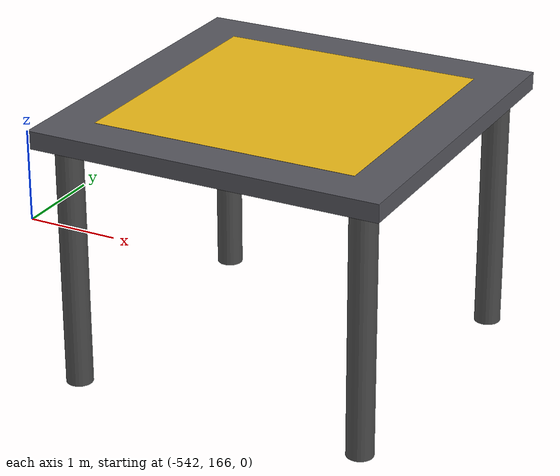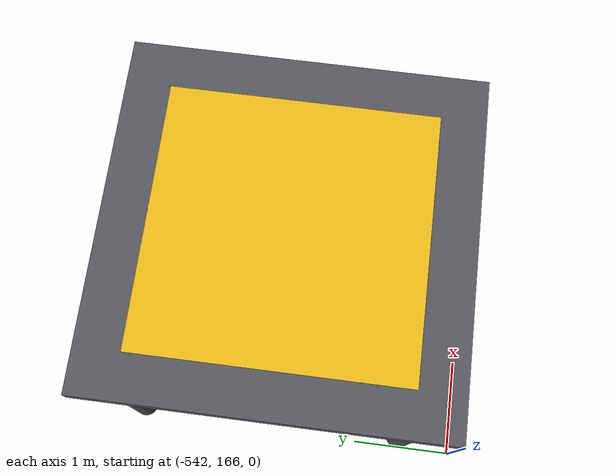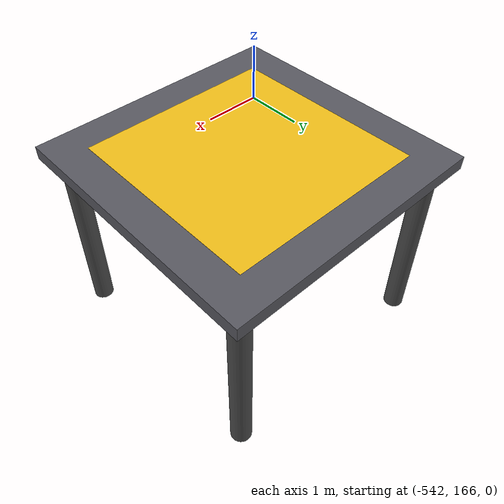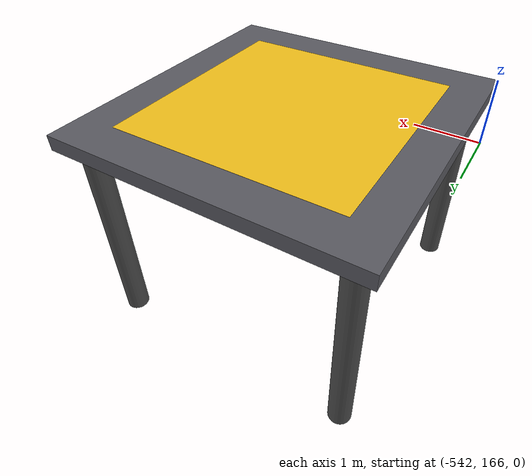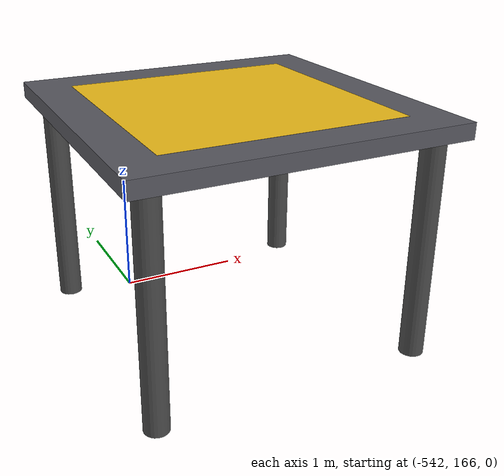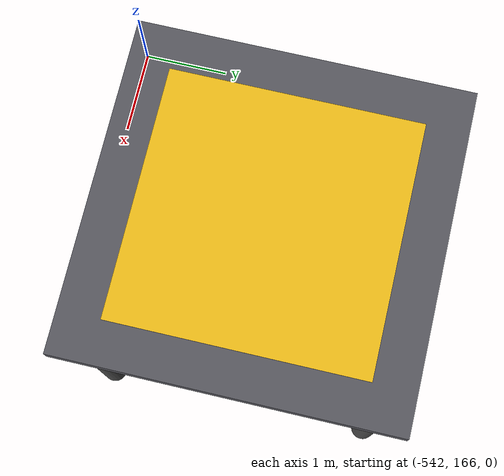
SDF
<sdf version="1.12">
 <world name="default">
  <physics name="default_physics" type="dart"><max_step_size>0.004</max_step_size></physics>
  <spherical_coordinates>
   <surface_model>EARTH_WGS84</surface_model>
   <world_frame_orientation>ENU</world_frame_orientation>
   <latitude_deg>-33.724223</latitude_deg>
   <longitude_deg>150.679736</longitude_deg>
   <elevation>0</elevation>
   <heading_deg>0</heading_deg>
  </spherical_coordinates>
  <scene><ambient>1.0 1.0 1.0</ambient><background>0.0 0.7 0.8</background><grid>false</grid></scene>
  <light type="directional" name="sun">
   <pose>0 0 20 0 0 0</pose>
   <diffuse>1 1 1 1</diffuse>
   <specular>0.5 0.5 0.5 1</specular>
   <attenuation>
    <range>1000</range>
    <constant>0.9</constant>
    <linear>0.01</linear>
    <quadratic>0.001</quadratic>
   </attenuation>
   <direction>-0.5 0.1 -0.9</direction>
  </light>
  <plugin filename="gz-sim-physics-system" name="gz::sim::systems::Physics"/>
  <plugin filename="gz-sim-user-commands-system" name="gz::sim::systems::UserCommands"/>
  <plugin filename="gz-sim-scene-broadcaster-system" name="gz::sim::systems::SceneBroadcaster"/>
  <plugin filename="gz-sim-sensors-system" name="gz::sim::systems::Sensors"/>
  <plugin filename="gz-sim-magnetometer-system" name="gz::sim::systems::Magnetometer">
   <use_units_gauss>false</use_units_gauss>
   <use_earth_frame_ned>false</use_earth_frame_ned>
  </plugin>
  <plugin filename="gz-sim-imu-system" name="gz::sim::systems::Imu"/>
  <plugin filename="gz-sim-navsat-system" name="gz::sim::systems::NavSat"/>
  <plugin filename="gz-sim-air-pressure-system" name="gz::sim::systems::AirPressure"/>
  <plugin filename="gz-maritime-buoyancy-system" name="gz::sim::maritime::Buoyancy">
   <graded_buoyancy>
    <default_density>1025</default_density>
    <density_change><above_depth>0</above_depth><density>1</density></density_change>
   </graded_buoyancy>
   <enable_by_default>false</enable_by_default>
  </plugin>
  <plugin filename="gz-maritime-wind-system" name="gz::sim::maritime::Wind">
   <speed>0</speed>
   <direction>0</direction>
   <reference_height>10</reference_height>
   <roughness_length>0.0002</roughness_length>
  </plugin>
  <plugin filename="gz-maritime-ocean-current-system" name="gz::sim::maritime::OceanCurrent">
   <speed>0</speed>
   <direction>0</direction>
  </plugin>
  <plugin filename="gz-sim-waves-fft-system" name="gz::sim::systems::FftWaves">
   <update_rate>30</update_rate>
   <wave><sea_state>1</sea_state><tiles_radius>5</tiles_radius></wave>
  </plugin>
  <include><pose>100 200 0 0 0 0</pose><uri>model://water_surface</uri></include>
  <include><uri>model://landing_pad</uri><pose>-540 168 0 0 0 0</pose></include>
 </world>
</sdf>

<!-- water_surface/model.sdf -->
<sdf version="1.10">
  <model name="water_surface">
    <static>true</static>
    <link name="link">
      <visual name="water">
        <geometry>
          <mesh>
            <uri>meshes/water.dae</uri>
          </mesh>
        </geometry>
        <plugin filename="gz-sim-water-visual-system"
                name="gz::sim::systems::WaterVisual">
          <shader>
            <fft_vertex>shaders/fft_water_vs_330.glsl</fft_vertex>
            <fragment>shaders/water_fs_330.glsl</fragment>
            <parameters>
              <rescale>0.5</rescale>
              <!-- Effective bumpmap tiling is bumpScale × 16 in the
                   VS (see fft_water_vs_330.glsl). 64 × 16 = 1024
                   bumpmap repeats per uv unit. -->
              <bumpScale>64 64</bumpScale>
              <bumpSpeed>0.01 0.01</bumpSpeed>
              <hdrMultiplier>0.4</hdrMultiplier>
              <fresnelPower>5.0</fresnelPower>
              <shallowColor>0 0.1 0.3 1.0</shallowColor>
              <deepColor>0 0.05 0.2 1.0</deepColor>
            </parameters>
          </shader>
          <textures>
            <bumpMap>textures/wave_normals.dds</bumpMap>
            <cubeMap>textures/skybox_lowres.dds</cubeMap>
          </textures>
          <tiles_radius>7</tiles_radius>
        </plugin>

        <plugin filename="gz-sim-waves-gerstner-gui"
                name="gz::sim::systems::GerstnerWavesGui"/>
        <plugin filename="gz-sim-waves-fft-gui"
                name="gz::sim::systems::FftWavesGui"/>
      </visual>
    </link>
  </model>
</sdf>

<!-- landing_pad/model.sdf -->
<sdf version="1.12">
  <model name="landing_pad">
    <static>true</static>
    <link name="deck">
      <collision name="deck_collision">
        <pose>0 0 0.9 0 0 0</pose>
        <geometry><box><size>4 4 0.2</size></box></geometry>
      </collision>
      <visual name="deck_visual">
        <pose>0 0 0.9 0 0 0</pose>
        <geometry><box><size>4 4 0.2</size></box></geometry>
        <material>
          <ambient>0.35 0.35 0.38 1</ambient>
          <diffuse>0.35 0.35 0.38 1</diffuse>
        </material>
      </visual>
      <visual name="marking">
        <pose>0 0 1.001 0 0 0</pose>
        <geometry><box><size>3 3 0.002</size></box></geometry>
        <material>
          <ambient>0.95 0.75 0.1 1</ambient>
          <diffuse>0.95 0.75 0.1 1</diffuse>
        </material>
      </visual>
      <visual name="pylon_0">
        <pose>1.7 1.7 -0.6 0 0 0</pose>
        <geometry><cylinder><radius>0.15</radius><length>2.8</length></cylinder></geometry>
        <material><ambient>0.3 0.3 0.3 1</ambient><diffuse>0.3 0.3 0.3 1</diffuse></material>
      </visual>
      <visual name="pylon_1">
        <pose>-1.7 1.7 -0.6 0 0 0</pose>
        <geometry><cylinder><radius>0.15</radius><length>2.8</length></cylinder></geometry>
        <material><ambient>0.3 0.3 0.3 1</ambient><diffuse>0.3 0.3 0.3 1</diffuse></material>
      </visual>
      <visual name="pylon_2">
        <pose>1.7 -1.7 -0.6 0 0 0</pose>
        <geometry><cylinder><radius>0.15</radius><length>2.8</length></cylinder></geometry>
        <material><ambient>0.3 0.3 0.3 1</ambient><diffuse>0.3 0.3 0.3 1</diffuse></material>
      </visual>
      <visual name="pylon_3">
        <pose>-1.7 -1.7 -0.6 0 0 0</pose>
        <geometry><cylinder><radius>0.15</radius><length>2.8</length></cylinder></geometry>
        <material><ambient>0.3 0.3 0.3 1</ambient><diffuse>0.3 0.3 0.3 1</diffuse></material>
      </visual>
    </link>
  </model>
</sdf>
